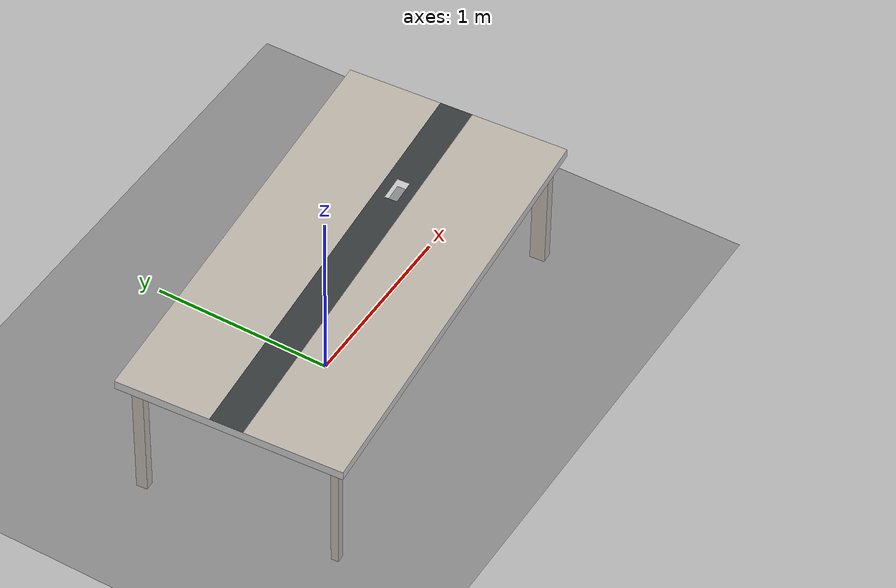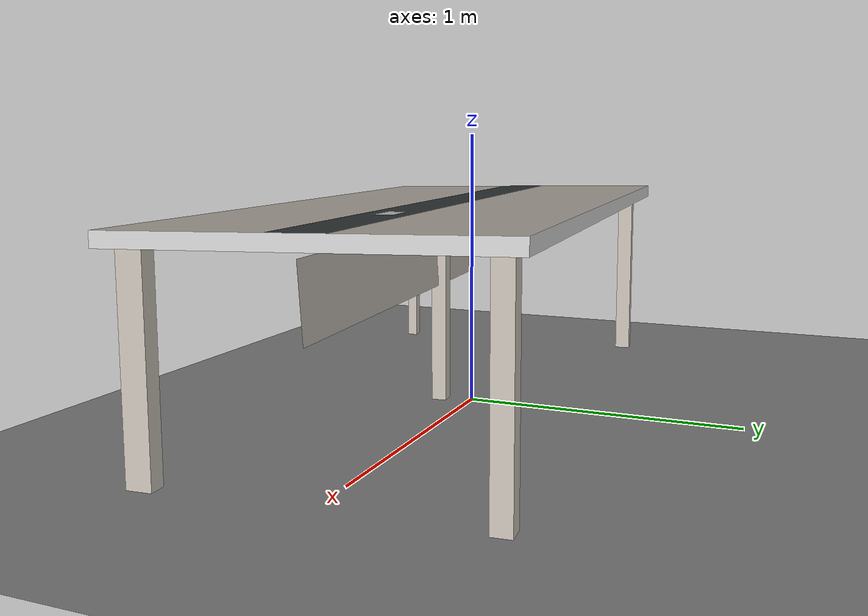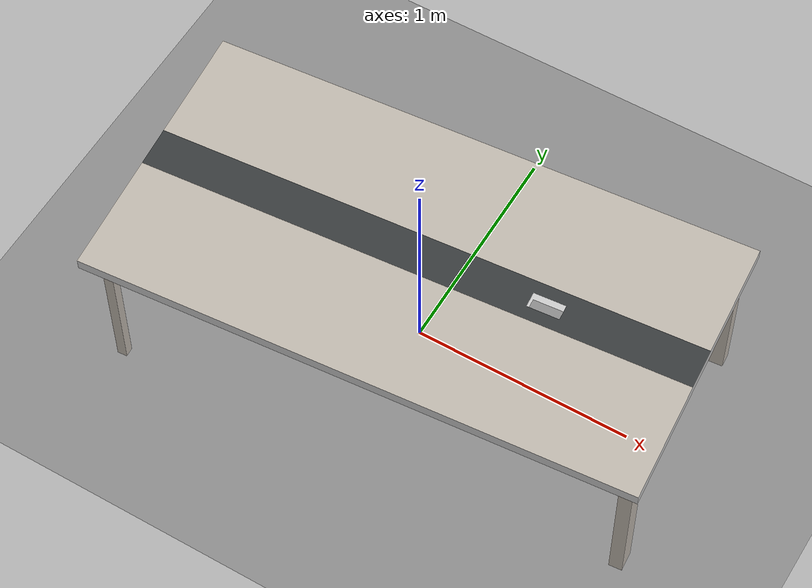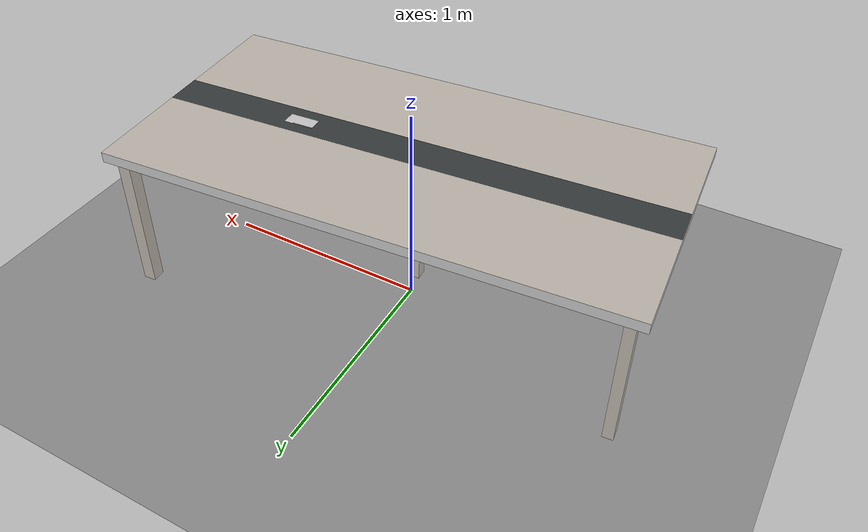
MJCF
<mujoco model="conference_table_scene">

  <compiler angle="radian" autolimits="true"/>

  <option gravity="0 0 -9.81" timestep="0.002"/>

  <visual>
    <headlight diffuse="0.3 0.3 0.3" ambient="0.4 0.4 0.4" specular="0.1 0.1 0.1"/>
    <quality shadowsize="4096"/>
  </visual>

  <asset>
    <mesh name="table_CenterStrip" file="parts/CenterStrip.obj" refquat="0.7071068 -0.7071068 0 0" inertia="shell"/>
    <material name="mat_CenterStrip" rgba="0.22 0.235 0.24 1" specular="0.15" shininess="0.2"/>
    <mesh name="table_M_03229dc24d71" file="parts/M_03229dc24d71.obj" refquat="0.7071068 -0.7071068 0 0" inertia="shell"/>
    <texture name="tex_M_03229dc24d71" type="2d" file="textures/45b788e7b83816b3.png"/>
    <material name="mat_M_03229dc24d71" texture="tex_M_03229dc24d71" specular="0.1" shininess="0.1"/>
    <mesh name="table_M_079f70c6abc8" file="parts/M_079f70c6abc8.obj" refquat="0.7071068 -0.7071068 0 0" inertia="shell"/>
    <texture name="tex_M_079f70c6abc8" type="2d" file="textures/1ea1516e54714e6e.png"/>
    <material name="mat_M_079f70c6abc8" texture="tex_M_079f70c6abc8" specular="0.1" shininess="0.1"/>
    <mesh name="table_M_173b31eb039b" file="parts/M_173b31eb039b.obj" refquat="0.7071068 -0.7071068 0 0" inertia="shell"/>
    <texture name="tex_M_173b31eb039b" type="2d" file="textures/4fe34dd18399dab9.png"/>
    <material name="mat_M_173b31eb039b" texture="tex_M_173b31eb039b" specular="0.1" shininess="0.1"/>
    <mesh name="table_M_2e184b356a3b" file="parts/M_2e184b356a3b.obj" refquat="0.7071068 -0.7071068 0 0" inertia="shell"/>
    <texture name="tex_M_2e184b356a3b" type="2d" file="textures/5bacd6d909e0afe9.png"/>
    <material name="mat_M_2e184b356a3b" texture="tex_M_2e184b356a3b" specular="0.1" shininess="0.1"/>
    <mesh name="table_M_3069c2837b58" file="parts/M_3069c2837b58.obj" refquat="0.7071068 -0.7071068 0 0" inertia="shell"/>
    <texture name="tex_M_3069c2837b58" type="2d" file="textures/b24fccf783573b4d.png"/>
    <material name="mat_M_3069c2837b58" texture="tex_M_3069c2837b58" specular="0.1" shininess="0.1"/>
    <mesh name="table_M_6789c69ee178" file="parts/M_6789c69ee178.obj" refquat="0.7071068 -0.7071068 0 0" inertia="shell"/>
    <texture name="tex_M_6789c69ee178" type="2d" file="textures/3c31b7aa6fd7843f.png"/>
    <material name="mat_M_6789c69ee178" texture="tex_M_6789c69ee178" specular="0.1" shininess="0.1"/>
    <mesh name="table_M_73770d3a65a1" file="parts/M_73770d3a65a1.obj" refquat="0.7071068 -0.7071068 0 0" inertia="shell"/>
    <texture name="tex_M_73770d3a65a1" type="2d" file="textures/a50031525e5adbdc.png"/>
    <material name="mat_M_73770d3a65a1" texture="tex_M_73770d3a65a1" specular="0.1" shininess="0.1"/>
    <mesh name="table_M_7bd62678b0fa" file="parts/M_7bd62678b0fa.obj" refquat="0.7071068 -0.7071068 0 0" inertia="shell"/>
    <texture name="tex_M_7bd62678b0fa" type="2d" file="textures/1cff3f63b7a55e9e.png"/>
    <material name="mat_M_7bd62678b0fa" texture="tex_M_7bd62678b0fa" specular="0.1" shininess="0.1"/>
    <mesh name="table_M_85e05c985a4d" file="parts/M_85e05c985a4d.obj" refquat="0.7071068 -0.7071068 0 0" inertia="shell"/>
    <texture name="tex_M_85e05c985a4d" type="2d" file="textures/960a5c58b0159e4e.png"/>
    <material name="mat_M_85e05c985a4d" texture="tex_M_85e05c985a4d" specular="0.1" shininess="0.1"/>
    <mesh name="table_M_8cbb3a933ae3" file="parts/M_8cbb3a933ae3.obj" refquat="0.7071068 -0.7071068 0 0" inertia="shell"/>
    <material name="mat_M_8cbb3a933ae3" rgba="0.8 0.8 0.8 1" specular="0.15" shininess="0.2"/>
    <mesh name="table_M_94be5c9cf1e9" file="parts/M_94be5c9cf1e9.obj" refquat="0.7071068 -0.7071068 0 0" inertia="shell"/>
    <texture name="tex_M_94be5c9cf1e9" type="2d" file="textures/c8eab04b3e104043.png"/>
    <material name="mat_M_94be5c9cf1e9" texture="tex_M_94be5c9cf1e9" specular="0.1" shininess="0.1"/>
    <mesh name="table_M_9927041748e5" file="parts/M_9927041748e5.obj" refquat="0.7071068 -0.7071068 0 0" inertia="shell"/>
    <texture name="tex_M_9927041748e5" type="2d" file="textures/a77b6d0e9a764245.png"/>
    <material name="mat_M_9927041748e5" texture="tex_M_9927041748e5" specular="0.1" shininess="0.1"/>
    <mesh name="table_M_9b9871f0920e" file="parts/M_9b9871f0920e.obj" refquat="0.7071068 -0.7071068 0 0" inertia="shell"/>
    <texture name="tex_M_9b9871f0920e" type="2d" file="textures/0cae2a61703a341e.png"/>
    <material name="mat_M_9b9871f0920e" texture="tex_M_9b9871f0920e" specular="0.1" shininess="0.1"/>
    <mesh name="table_M_a0496330385f" file="parts/M_a0496330385f.obj" refquat="0.7071068 -0.7071068 0 0" inertia="shell"/>
    <texture name="tex_M_a0496330385f" type="2d" file="textures/bb08ef79b103fc4b.png"/>
    <material name="mat_M_a0496330385f" texture="tex_M_a0496330385f" specular="0.1" shininess="0.1"/>
    <mesh name="table_M_af0c2f61975e" file="parts/M_af0c2f61975e.obj" refquat="0.7071068 -0.7071068 0 0" inertia="shell"/>
    <texture name="tex_M_af0c2f61975e" type="2d" file="textures/3eb0ee51fa890871.png"/>
    <material name="mat_M_af0c2f61975e" texture="tex_M_af0c2f61975e" specular="0.1" shininess="0.1"/>
    <mesh name="table_M_c6fbb8dfda19" file="parts/M_c6fbb8dfda19.obj" refquat="0.7071068 -0.7071068 0 0" inertia="shell"/>
    <texture name="tex_M_c6fbb8dfda19" type="2d" file="textures/4daeb43dab2c2b57.png"/>
    <material name="mat_M_c6fbb8dfda19" texture="tex_M_c6fbb8dfda19" specular="0.1" shininess="0.1"/>
    <mesh name="table_M_ccc370a44f6a" file="parts/M_ccc370a44f6a.obj" refquat="0.7071068 -0.7071068 0 0" inertia="shell"/>
    <texture name="tex_M_ccc370a44f6a" type="2d" file="textures/fbaa85bfae4efaa4.png"/>
    <material name="mat_M_ccc370a44f6a" texture="tex_M_ccc370a44f6a" specular="0.1" shininess="0.1"/>
    <mesh name="table_M_cf53be7b496a" file="parts/M_cf53be7b496a.obj" refquat="0.7071068 -0.7071068 0 0" inertia="shell"/>
    <texture name="tex_M_cf53be7b496a" type="2d" file="textures/6a0af26493474497.png"/>
    <material name="mat_M_cf53be7b496a" texture="tex_M_cf53be7b496a" specular="0.1" shininess="0.1"/>
    <mesh name="table_M_d76e336d225c" file="parts/M_d76e336d225c.obj" refquat="0.7071068 -0.7071068 0 0" inertia="shell"/>
    <texture name="tex_M_d76e336d225c" type="2d" file="textures/c1e5c9a03193a764.png"/>
    <material name="mat_M_d76e336d225c" texture="tex_M_d76e336d225c" specular="0.1" shininess="0.1"/>
    <mesh name="table_M_d7df3db2438f" file="parts/M_d7df3db2438f.obj" refquat="0.7071068 -0.7071068 0 0" inertia="shell"/>
    <texture name="tex_M_d7df3db2438f" type="2d" file="textures/7362e9d551ae877b.png"/>
    <material name="mat_M_d7df3db2438f" texture="tex_M_d7df3db2438f" specular="0.1" shininess="0.1"/>
    <mesh name="table_M_dcdb5f84f30e" file="parts/M_dcdb5f84f30e.obj" refquat="0.7071068 -0.7071068 0 0" inertia="shell"/>
    <texture name="tex_M_dcdb5f84f30e" type="2d" file="textures/620b6e6118f3f967.png"/>
    <material name="mat_M_dcdb5f84f30e" texture="tex_M_dcdb5f84f30e" specular="0.1" shininess="0.1"/>
    <mesh name="table_M_e17fd9b22509" file="parts/M_e17fd9b22509.obj" refquat="0.7071068 -0.7071068 0 0" inertia="shell"/>
    <texture name="tex_M_e17fd9b22509" type="2d" file="textures/6bbc26ed802baf91.png"/>
    <material name="mat_M_e17fd9b22509" texture="tex_M_e17fd9b22509" specular="0.1" shininess="0.1"/>
    <mesh name="table_RealWalnut" file="parts/RealWalnut.obj" refquat="0.7071068 -0.7071068 0 0" inertia="shell"/>
    <texture name="tex_RealWalnut" type="2d" file="textures/real_walnut.png"/>
    <material name="mat_RealWalnut" texture="tex_RealWalnut" specular="0.1" shininess="0.1"/>

    <material name="floor_mat" rgba="0.55 0.55 0.55 1" specular="0.05" shininess="0.0"/>
  </asset>

  <worldbody>
    <light name="top_light" pos="0 0 3.0" dir="0 0 -1" diffuse="0.6 0.6 0.6" specular="0.1 0.1 0.1" castshadow="true"/>

    <camera name="table_view" pos="3.2 -3.2 2.0" xyaxes="0.707 0.707 0 -0.35 0.35 0.87"/>

    <geom name="floor" type="plane" size="3 3 0.05" pos="0 0 0" material="floor_mat"
          contype="1" conaffinity="1"/>

    <!-- Body offset so the leg bottoms (mesh min Z = 0.048 m post-rotation) rest on the floor. -->
    <body name="conference_table" pos="0 0 -0.048">
      <geom name="geom_CenterStrip" type="mesh" mesh="table_CenterStrip" material="mat_CenterStrip" contype="0" conaffinity="0" group="2"/>
      <geom name="geom_M_03229dc24d71" type="mesh" mesh="table_M_03229dc24d71" material="mat_M_03229dc24d71" contype="0" conaffinity="0" group="2"/>
      <geom name="geom_M_079f70c6abc8" type="mesh" mesh="table_M_079f70c6abc8" material="mat_M_079f70c6abc8" contype="0" conaffinity="0" group="2"/>
      <geom name="geom_M_173b31eb039b" type="mesh" mesh="table_M_173b31eb039b" material="mat_M_173b31eb039b" contype="0" conaffinity="0" group="2"/>
      <geom name="geom_M_2e184b356a3b" type="mesh" mesh="table_M_2e184b356a3b" material="mat_M_2e184b356a3b" contype="0" conaffinity="0" group="2"/>
      <geom name="geom_M_3069c2837b58" type="mesh" mesh="table_M_3069c2837b58" material="mat_M_3069c2837b58" contype="0" conaffinity="0" group="2"/>
      <geom name="geom_M_6789c69ee178" type="mesh" mesh="table_M_6789c69ee178" material="mat_M_6789c69ee178" contype="0" conaffinity="0" group="2"/>
      <geom name="geom_M_73770d3a65a1" type="mesh" mesh="table_M_73770d3a65a1" material="mat_M_73770d3a65a1" contype="0" conaffinity="0" group="2"/>
      <geom name="geom_M_7bd62678b0fa" type="mesh" mesh="table_M_7bd62678b0fa" material="mat_M_7bd62678b0fa" contype="0" conaffinity="0" group="2"/>
      <geom name="geom_M_85e05c985a4d" type="mesh" mesh="table_M_85e05c985a4d" material="mat_M_85e05c985a4d" contype="0" conaffinity="0" group="2"/>
      <geom name="geom_M_8cbb3a933ae3" type="mesh" mesh="table_M_8cbb3a933ae3" material="mat_M_8cbb3a933ae3" contype="0" conaffinity="0" group="2"/>
      <geom name="geom_M_94be5c9cf1e9" type="mesh" mesh="table_M_94be5c9cf1e9" material="mat_M_94be5c9cf1e9" contype="0" conaffinity="0" group="2"/>
      <geom name="geom_M_9927041748e5" type="mesh" mesh="table_M_9927041748e5" material="mat_M_9927041748e5" contype="0" conaffinity="0" group="2"/>
      <geom name="geom_M_9b9871f0920e" type="mesh" mesh="table_M_9b9871f0920e" material="mat_M_9b9871f0920e" contype="0" conaffinity="0" group="2"/>
      <geom name="geom_M_a0496330385f" type="mesh" mesh="table_M_a0496330385f" material="mat_M_a0496330385f" contype="0" conaffinity="0" group="2"/>
      <geom name="geom_M_af0c2f61975e" type="mesh" mesh="table_M_af0c2f61975e" material="mat_M_af0c2f61975e" contype="0" conaffinity="0" group="2"/>
      <geom name="geom_M_c6fbb8dfda19" type="mesh" mesh="table_M_c6fbb8dfda19" material="mat_M_c6fbb8dfda19" contype="0" conaffinity="0" group="2"/>
      <geom name="geom_M_ccc370a44f6a" type="mesh" mesh="table_M_ccc370a44f6a" material="mat_M_ccc370a44f6a" contype="0" conaffinity="0" group="2"/>
      <geom name="geom_M_cf53be7b496a" type="mesh" mesh="table_M_cf53be7b496a" material="mat_M_cf53be7b496a" contype="0" conaffinity="0" group="2"/>
      <geom name="geom_M_d76e336d225c" type="mesh" mesh="table_M_d76e336d225c" material="mat_M_d76e336d225c" contype="0" conaffinity="0" group="2"/>
      <geom name="geom_M_d7df3db2438f" type="mesh" mesh="table_M_d7df3db2438f" material="mat_M_d7df3db2438f" contype="0" conaffinity="0" group="2"/>
      <geom name="geom_M_dcdb5f84f30e" type="mesh" mesh="table_M_dcdb5f84f30e" material="mat_M_dcdb5f84f30e" contype="0" conaffinity="0" group="2"/>
      <geom name="geom_M_e17fd9b22509" type="mesh" mesh="table_M_e17fd9b22509" material="mat_M_e17fd9b22509" contype="0" conaffinity="0" group="2"/>
      <geom name="geom_RealWalnut" type="mesh" mesh="table_RealWalnut" material="mat_RealWalnut" contype="0" conaffinity="0" group="2"/>
    </body>
  </worldbody>
</mujoco>
